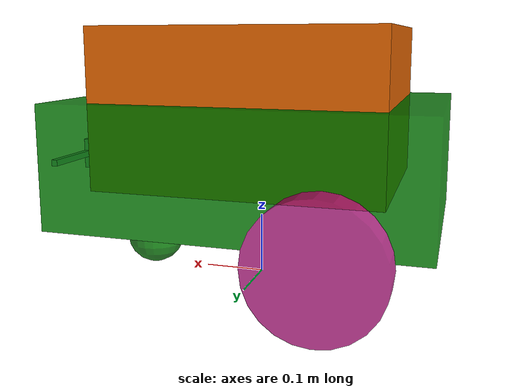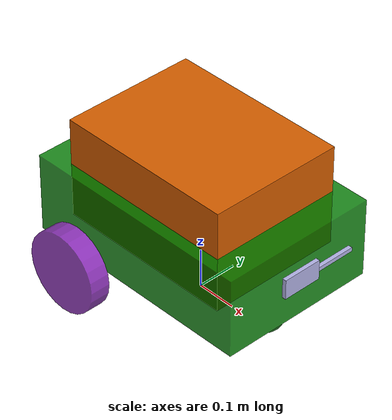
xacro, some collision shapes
<?xml version="1.0"?>
<robot name="neptun_2" xmlns:xacro='http://www.ros.org/wiki/xacro'>
    <xacro:include filename="common_properties.xacro" />
    <xacro:include filename="mobile.xacro"/>
    <xacro:include filename="neptune_2_gazebo.xacro"/>
    <xacro:include filename="camera.xacro" />
    <xacro:include filename="projector.xacro" />
</robot>

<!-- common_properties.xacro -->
<robot  xmlns:xacro='http://www.ros.org/wiki/xacro'> <!-- no robot name -->

    <material name="green_b">
        <color rgba="0 0.5 0 0.85" />
    </material>

    <material name="purple_r">
        <color rgba="0.5 0.1 0.7 0.85"/>
    </material>

    <material name="purple_l">
        <color rgba="0.7 0.1 0.5 0.85"/>
    </material>

    <material name="red">
        <color rgba="0.8 0.12 0.15 0.85"/>
    </material>

    <material name="light_gray">
        <color rgba="0.7 0.7 0.9 1"/>
    </material>

    <!--mass length width heigth xyz rpy-->
    <xacro:macro name="box_inertia" params="m l w h xyz rpy">
        <inertial>
            <origin xyz="${xyz}" rpy="${rpy}"/>
            <mass value="${m}"/>
            <inertia ixx="${(m / 12.0) * (h * h + w * w)}" ixy="0.0" ixz="0.0"
                     iyy="${(m / 12.0)*(h*h + l*l)}" iyz="0.0"
                     izz="${(m /12.0)*(l*l + w*w)}"/>
            </inertial>
    </xacro:macro>

    <xacro:macro name="cylinder_inertia" params="m r h xyz rpy">
        <inertial>
            <origin xyz="${xyz}" rpy="${rpy}"/>
            <mass value="${m}"/>
            <inertia ixx="${(m/12.0)*(3*r*r + h*h)}" ixy="0.0" ixz="0.0"
                     iyy="${(m/2.0)*r*r}" iyz="0.0"
                     izz="${(m/12.0)*(3*r*r + h*h)}"/>
        </inertial>
    </xacro:macro>

    <xacro:macro name="sphere_inertia" params="m r xyz">
        <inertial>
            <origin xyz="${xyz}"/>
            <mass value="${m}"/>
            <inertia ixx="${0.4*m*r}" ixy="0.0" ixz="0.0"
                    iyy="${0.4*m*r}" iyz="0.0"
                    izz="${0.4*m*r}"/>
        </inertial>
    </xacro:macro>

</robot>

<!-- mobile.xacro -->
<robot xmlns:xacro="http://www.ros.org/wiki/xacro">

    <xacro:property name="base_length" value="0.6" />
    <xacro:property name="base_width" value="0.4" />
    <xacro:property name="base_height" value="0.2" />
    <xacro:property name="wheel_radius" value="0.1" />
    <xacro:property name="wheel_length" value="0.05" />

    <link name="base_link">
        <visual>
            <geometry>
                <box size="${base_length} ${base_width} ${base_height}"/>
            </geometry>
            <origin xyz="0 0 ${wheel_radius}" rpy="0 0 0"/>
            <material name="green_b" />
        </visual>
        <collision>
            <geometry>
                <box size="${base_length} ${base_width} ${base_height}"/>
            </geometry>
            <origin xyz="0 0 ${wheel_radius}" rpy="0 0 0"/>
        </collision>
        <xacro:box_inertia
            m="5.0"
            l="${base_length}" w="${base_width}" h="${base_height}"
            xyz="0 0 ${wheel_radius}" rpy="0 0 0"
        />

    </link>

    <link name="right_wheel_link">
        <visual>
            <geometry>
                <cylinder radius="${wheel_radius}" length="${wheel_length}" />
            </geometry>
            <origin xyz="0 -0.025 0" rpy="${pi / 2.0} 0 0"/>
            <material name="purple_r" />
        </visual>
        <collision>
           <geometry>
                <cylinder radius="${wheel_radius}" length="${wheel_length}" />
            </geometry>
            <origin xyz="0 -0.025 0" rpy="${pi / 2.0} 0 0"/>
        </collision>
        <xacro:cylinder_inertia
            m="1.0"
            r="${wheel_radius}"
            h="${wheel_length}"
            xyz="0 -0.025 0"
            rpy="${pi / 2.0} 0 0"
        />
    </link>

    <link name="left_wheel_link">
        <visual>
            <geometry>
                <cylinder radius="${wheel_radius}" length="${wheel_length}" />
            </geometry>
            <origin xyz="0 0.025 0" rpy="${pi / 2.0} 0 0"/>
            <material name="purple_l" />
        </visual>
        <collision>
            <geometry>
                <cylinder radius="${wheel_radius}" length="${wheel_length}" />
            </geometry>
            <origin xyz="0 0.025 0" rpy="${pi / 2.0} 0 0"/>
        </collision>
        <xacro:cylinder_inertia
            m="1.0"
            r="${wheel_radius}"
            h="${wheel_length}"
            xyz="0 0.025 0"
            rpy="${pi / 2.0} 0 0"
        />
    </link>

    <link name="castor_wheel">
        <visual>
            <geometry>
                <sphere radius="${wheel_radius / 2.0}" />
            </geometry>
            <origin xyz="0 0 0" />
            <material name="green_b" />
        </visual>
        <collision>
            <geometry>
                <sphere radius="${wheel_radius / 2.0}" />
            </geometry>
            <origin xyz="0 0 0" />
        </collision>
        <xacro:sphere_inertia
            m="0.5"
            r="${wheel_radius / 2.0}"
            xyz="0 0 0"
        />
    </link>

    <link name="base_footprint">
        <origin xyz="0 0 0" />
    </link>

    <link name="blueRov">
        <visual>
            <geometry>

                <mesh filename="file://$(find neptune_2_description)/meshes/blueRov2.dae" />

           </geometry>
            <origin xyz="0.0 0.0 -0.18" rpy="0 0 ${pi / 2}" />
        </visual>
        <collision>
            <origin xyz="0.0 0.0 -0.18" rpy="0 0 ${pi / 2}" />
            <geometry>
                <box size="0.340 0.457 0.254"/>
            </geometry>
        </collision>
        <xacro:box_inertia
            m="10"
            l="0.340" w="0.457" h="0.254"
            xyz="0.0 0.0 -0.18" rpy="0 0 0"
        />
    </link>
    <joint name="joint_base_blueRov" type="fixed">
        <origin xyz="0 0 0.37" rpy=" 0 0 0"/> <!--{pi} 0 ${pi / 2} -->
        <parent link="base_link"/>
        <child link="blueRov"/>
        <axis xyz="0 1 0"/>
    </joint>

    <joint name="base_joint" type="fixed">
        <parent link="base_footprint" />
        <child link="base_link" />
        <origin xyz="0 0 ${wheel_radius}" rpy="0 0 0" />
    </joint>

    <joint name="base_right_wheel_joint" type="continuous">
        <parent link="base_link" />
        <child link="right_wheel_link"/>
        <origin xyz ="${-base_length / 4.0} -0.225 0" rpy="0 0 0" />
        <axis xyz="0 1 0" />
    </joint>

    <joint name="base_left_wheel_joint" type="continuous">
        <parent link="base_link" />
        <child link="left_wheel_link"/>
        <origin xyz ="${-base_length / 4.0} 0.225 0" rpy="0 0 0" />
        <axis xyz="0 1 0" />
    </joint>

    <joint name="base_castor_wheel" type="fixed">
        <parent link="base_link" />
        <child link="castor_wheel" />
        <origin xyz="${base_length / 3.0} 0 ${-wheel_radius / 2.0}" />
    </joint>
</robot>

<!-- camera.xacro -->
<robot xmlns:xacro="http://www.ros.org/wiki/xacro">

    <xacro:property name="camera_x_dim" value="0.01" />
    <xacro:property name="camera_y_dim" value="0.1"  />
    <xacro:property name="camera_z_dim" value="0.05" />

    <link name="camera_link">
        <visual>
            <geometry>
                <box size="${camera_x_dim} ${camera_y_dim} ${camera_z_dim}"/>
            </geometry>
            <origin xyz="${camera_x_dim / 2} 0.0 0.0" rpy="0.0 0.0 0.0"/>
            <material name="light_gray" />
        </visual>
        <collision>
            <geometry>
                <box size="${camera_x_dim} ${camera_y_dim} ${camera_z_dim}"/>
            </geometry>
        </collision>
        <xacro:box_inertia
            m="0.1"
            l= "${camera_x_dim}" w="${camera_y_dim}" h="${camera_z_dim}"
            xyz="0.0 0.0 0.0" rpy="0.0 0.0 0.0"
        />
    </link>

    <link name="camera_link_optical">
        <!--Needed to work with openCV-->
    </link>

    <joint name="camera_optical_joint" type="fixed">
        <parent link="camera_link"/>
        <child link="camera_link_optical"/>
        <origin xyz="0.0 0.0 0.0" rpy="${-pi/2} 0.0 ${-pi/2}"/>
    </joint>
    <joint name="base_camera_joint" type="fixed">
        <parent link="base_link"/>
        <child link="camera_link"/>
        <origin xyz= "${base_length / 2}
                      0
                      ${base_height / 2}"
                rpy="0.0 0.0 0.0"/>
    </joint>
</robot>

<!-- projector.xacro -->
<robot xmlns:xacro="http://www.ros.org/wiki/xacro">

    <xacro:property name="proj_x_dim" value="0.01" />
    <xacro:property name="proj_y_dim" value="0.1"  />
    <xacro:property name="proj_z_dim" value="0.05" />

   <link name="proj_link">
        <visual>
            <geometry>
                <box size="${proj_x_dim} ${proj_y_dim} ${proj_x_dim}"/>
            </geometry>
            <origin xyz="${proj_x_dim / 2} 0.0 0.0" rpy="0.0 0.0 0.0"/>
            <material name="light_gray" />
        </visual>
        <collision>
            <geometry>
                <box size="${proj_x_dim} ${proj_y_dim} ${proj_z_dim}"/>
            </geometry>
        </collision>
        <xacro:box_inertia
            m="0.1"
            l= "${proj_x_dim}" w="${proj_y_dim}" h="${proj_z_dim}"
            xyz="0.0 0.0 0.0" rpy="0.0 0.0 0.0"
        />
    </link>

    <joint name="proj_joint" type="fixed">
        <parent link="base_link"/>
        <child link="proj_link"/>
        <origin xyz="${base_length / 2}
                     ${base_width / 4}
                     ${base_height / 2}"
                     rpy="0.0 0.0 0.0"/>
    </joint>
</robot>
